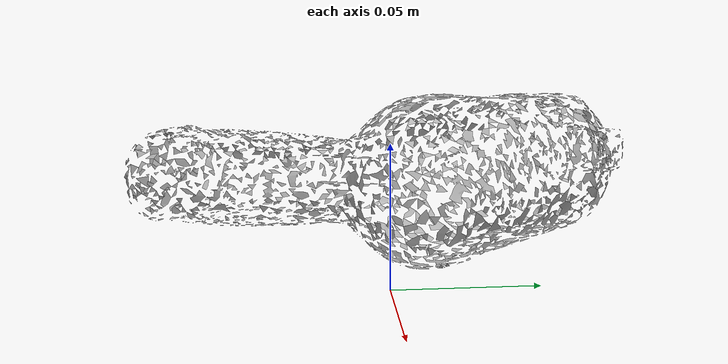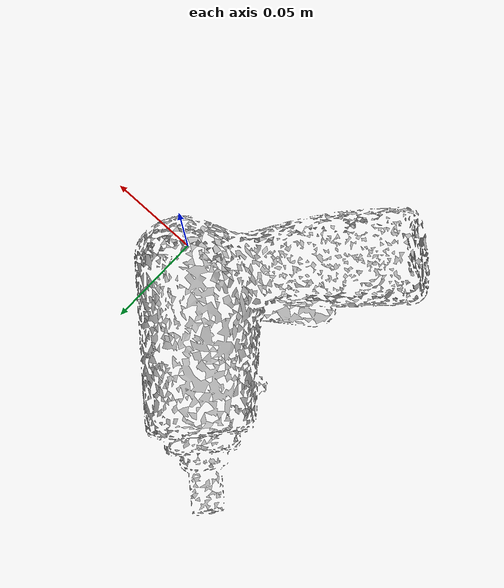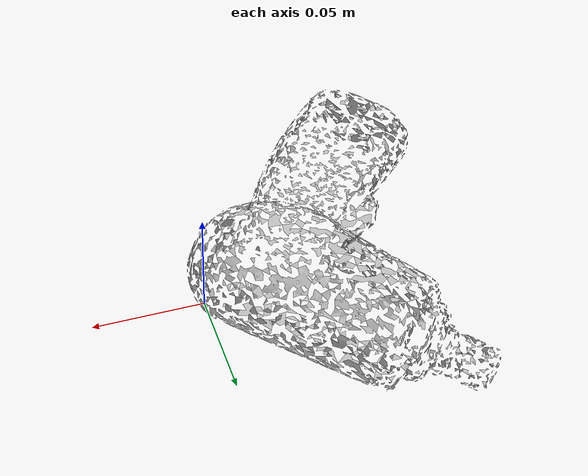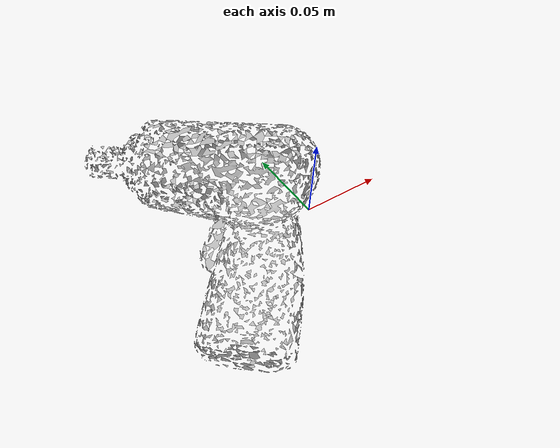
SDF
<?xml version='1.0'?>
<sdf version="1.4">
  <model name="b_toy_airplane">
    <static>false</static>
    <link name="link">
      <inertial>
        <pose>-0.04948007536634335 0.011121747774205814 0.025398688412704613 1.184002375274508 -1.4085011391111544 -2.9395939786163923</pose>
        <mass>0.00034672561297552915</mass>
        <inertia>
          <ixx>7.967682486606069e-07</ixx>
          <ixy>-3.582836843623261e-23</ixy>
          <ixz>3.8934678449285577e-23</ixz>
          <iyy>6.388394989967549e-07</iyy>
          <iyz>2.2393688073951888e-23</iyz>
          <izz>2.521922211628816e-07</izz>
        </inertia>
      </inertial>
      <collision name="collision">
        <geometry>
          <mesh>
            <!-- Use a downsampled mesh for collisions -->
            <uri>model://072-b_toy_airplane/downsampled.obj</uri>
	        </mesh>
        </geometry>
        <surface>
      </surface>
      </collision>
      <visual name="visual">
        <geometry>
          <mesh>
            <uri>model://072-b_toy_airplane/google_16k/textured.obj</uri>
	        </mesh>
        </geometry>
        <material>
          <script>
            <uri>model://072-b_toy_airplane/b_toy_airplane.material</uri>
            <name>b_toy_airplane</name>
          </script>
        </material>
      </visual>
    </link>
  </model>
</sdf>
